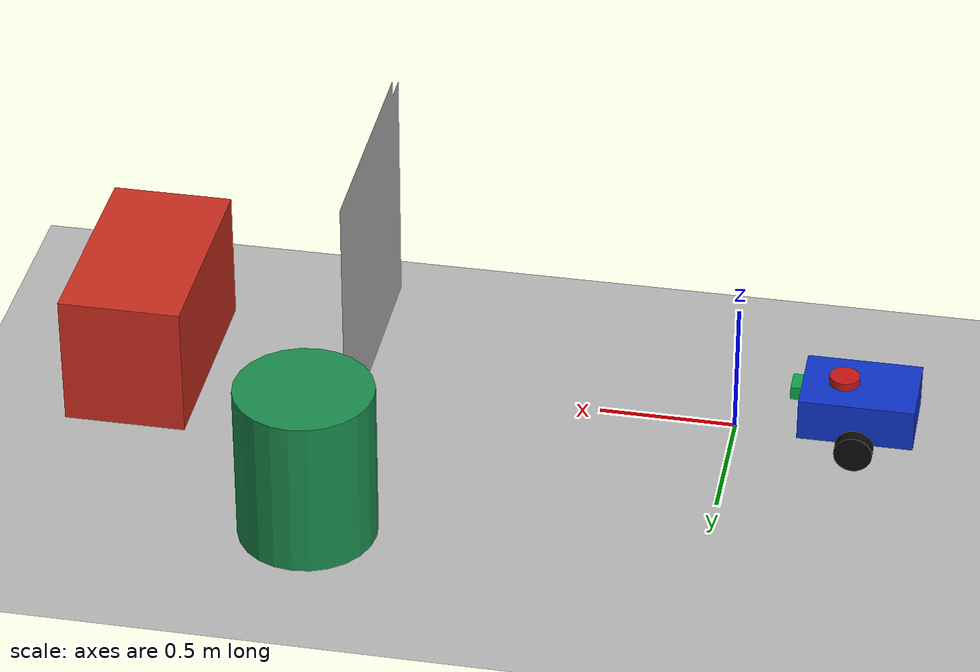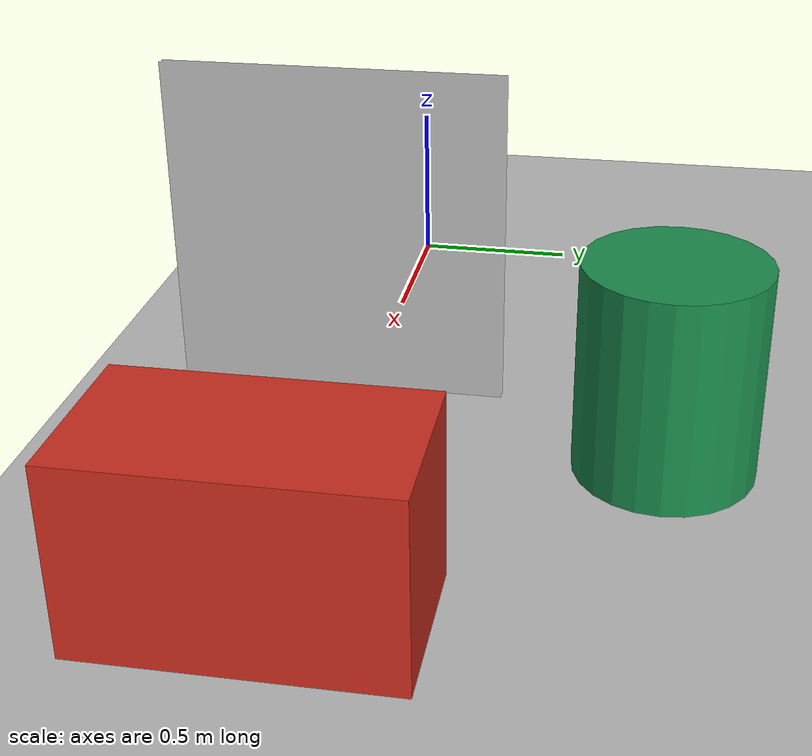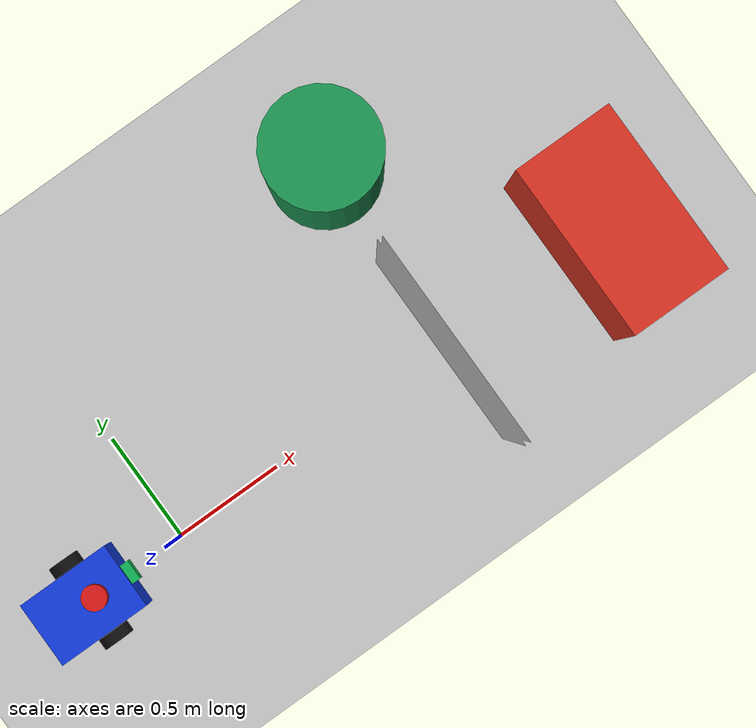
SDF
<?xml version="1.0"?>
<sdf version="1.10">
  <world name="diffbot_sensors_world">
    <plugin filename="gz-sim-physics-system" name="gz::sim::systems::Physics"/>
    <plugin filename="gz-sim-sensors-system" name="gz::sim::systems::Sensors">
      <render_engine>ogre2</render_engine>
    </plugin>
    <plugin filename="gz-sim-user-commands-system" name="gz::sim::systems::UserCommands"/>
    <plugin filename="gz-sim-scene-broadcaster-system" name="gz::sim::systems::SceneBroadcaster"/>

    <gravity>0 0 -9.8</gravity>
    <magnetic_field>6.0e-6 2.3e-5 -4.2e-5</magnetic_field>
    <atmosphere type="adiabatic"/>

    <scene>
      <ambient>0.65 0.65 0.65</ambient>
      <background>0.78 0.82 0.86</background>
      <grid>true</grid>
    </scene>

    <light name="sun" type="directional">
      <cast_shadows>true</cast_shadows>
      <pose>0 0 10 0 0 0</pose>
      <diffuse>0.8 0.8 0.8 1</diffuse>
      <specular>0.2 0.2 0.2 1</specular>
      <attenuation>
        <range>1000</range>
        <constant>0.9</constant>
        <linear>0.01</linear>
        <quadratic>0.001</quadratic>
      </attenuation>
      <direction>-0.5 0.1 -0.9</direction>
    </light>

    <model name="ground_plane">
      <static>true</static>
      <link name="link">
        <collision name="collision">
          <geometry>
            <plane>
              <normal>0 0 1</normal>
              <size>20 20</size>
            </plane>
          </geometry>
        </collision>
        <visual name="visual">
          <geometry>
            <plane>
              <normal>0 0 1</normal>
              <size>20 20</size>
            </plane>
          </geometry>
          <material>
            <ambient>0.72 0.72 0.72 1</ambient>
            <diffuse>0.72 0.72 0.72 1</diffuse>
            <specular>0.08 0.08 0.08 1</specular>
          </material>
        </visual>
      </link>
    </model>

    <model name="front_box">
      <static>true</static>
      <pose>2.2 0 0.25 0 0 0</pose>
      <link name="link">
        <collision name="collision">
          <geometry>
            <box>
              <size>0.45 0.80 0.50</size>
            </box>
          </geometry>
        </collision>
        <visual name="visual">
          <geometry>
            <box>
              <size>0.45 0.80 0.50</size>
            </box>
          </geometry>
          <material>
            <ambient>0.80 0.18 0.12 1</ambient>
            <diffuse>0.80 0.18 0.12 1</diffuse>
            <specular>0.08 0.08 0.08 1</specular>
          </material>
        </visual>
      </link>
    </model>

    <model name="left_cylinder">
      <static>true</static>
      <pose>1.4 0.9 0.30 0 0 0</pose>
      <link name="link">
        <collision name="collision">
          <geometry>
            <cylinder>
              <radius>0.25</radius>
              <length>0.60</length>
            </cylinder>
          </geometry>
        </collision>
        <visual name="visual">
          <geometry>
            <cylinder>
              <radius>0.25</radius>
              <length>0.60</length>
            </cylinder>
          </geometry>
          <material>
            <ambient>0.10 0.55 0.30 1</ambient>
            <diffuse>0.10 0.55 0.30 1</diffuse>
            <specular>0.08 0.08 0.08 1</specular>
          </material>
        </visual>
      </link>
    </model>

    <model name="yolo_stop_sign_board">
      <static>true</static>
      <pose>1.35 0 0.60 0 0 0</pose>
      <link name="sign_link">
        <collision name="collision">
          <geometry>
            <box>
              <size>0.02 0.90 0.90</size>
            </box>
          </geometry>
        </collision>
        <visual name="stop_sign_visual">
          <geometry>
            <mesh>
              <uri>package://robot_simulation/models/yolo_stop_sign_board/meshes/stop_sign_board.obj</uri>
            </mesh>
          </geometry>
        </visual>
      </link>
    </model>

    <model name="diffbot">
      <pose>-0.45 0 0 0 0 0</pose>

      <link name="base_link">
        <pose>0 0 0.16 0 0 0</pose>
        <inertial>
          <mass>4.0</mass>
          <inertia>
            <ixx>0.04</ixx>
            <ixy>0</ixy>
            <ixz>0</ixz>
            <iyy>0.08</iyy>
            <iyz>0</iyz>
            <izz>0.10</izz>
          </inertia>
        </inertial>
        <visual name="visual">
          <geometry>
            <box>
              <size>0.42 0.30 0.16</size>
            </box>
          </geometry>
          <material>
            <ambient>0.05 0.20 0.80 1</ambient>
            <diffuse>0.05 0.20 0.80 1</diffuse>
            <specular>0.10 0.10 0.10 1</specular>
          </material>
        </visual>
        <collision name="collision">
          <geometry>
            <box>
              <size>0.42 0.30 0.16</size>
            </box>
          </geometry>
        </collision>
      </link>

      <link name="left_wheel_link">
        <pose>0 0.18 0.07 0 0 0</pose>
        <inertial>
          <mass>0.35</mass>
          <inertia>
            <ixx>0.001</ixx>
            <ixy>0</ixy>
            <ixz>0</ixz>
            <iyy>0.001</iyy>
            <iyz>0</iyz>
            <izz>0.001</izz>
          </inertia>
        </inertial>
        <visual name="visual">
          <pose>0 0 0 1.5708 0 0</pose>
          <geometry>
            <cylinder>
              <radius>0.07</radius>
              <length>0.05</length>
            </cylinder>
          </geometry>
          <material>
            <ambient>0.04 0.04 0.04 1</ambient>
            <diffuse>0.04 0.04 0.04 1</diffuse>
            <specular>0.20 0.20 0.20 1</specular>
          </material>
        </visual>
        <collision name="collision">
          <pose>0 0 0 1.5708 0 0</pose>
          <geometry>
            <cylinder>
              <radius>0.07</radius>
              <length>0.05</length>
            </cylinder>
          </geometry>
          <surface>
            <friction>
              <ode>
                <mu>1.0</mu>
                <mu2>1.0</mu2>
              </ode>
            </friction>
          </surface>
        </collision>
      </link>

      <link name="right_wheel_link">
        <pose>0 -0.18 0.07 0 0 0</pose>
        <inertial>
          <mass>0.35</mass>
          <inertia>
            <ixx>0.001</ixx>
            <ixy>0</ixy>
            <ixz>0</ixz>
            <iyy>0.001</iyy>
            <iyz>0</iyz>
            <izz>0.001</izz>
          </inertia>
        </inertial>
        <visual name="visual">
          <pose>0 0 0 1.5708 0 0</pose>
          <geometry>
            <cylinder>
              <radius>0.07</radius>
              <length>0.05</length>
            </cylinder>
          </geometry>
          <material>
            <ambient>0.04 0.04 0.04 1</ambient>
            <diffuse>0.04 0.04 0.04 1</diffuse>
            <specular>0.20 0.20 0.20 1</specular>
          </material>
        </visual>
        <collision name="collision">
          <pose>0 0 0 1.5708 0 0</pose>
          <geometry>
            <cylinder>
              <radius>0.07</radius>
              <length>0.05</length>
            </cylinder>
          </geometry>
          <surface>
            <friction>
              <ode>
                <mu>1.0</mu>
                <mu2>1.0</mu2>
              </ode>
            </friction>
          </surface>
        </collision>
      </link>

      <link name="front_caster_link">
        <pose>0.16 0 0.035 0 0 0</pose>
        <inertial>
          <mass>0.1</mass>
          <inertia>
            <ixx>0.0001</ixx>
            <ixy>0</ixy>
            <ixz>0</ixz>
            <iyy>0.0001</iyy>
            <iyz>0</iyz>
            <izz>0.0001</izz>
          </inertia>
        </inertial>
        <visual name="visual">
          <geometry>
            <sphere>
              <radius>0.035</radius>
            </sphere>
          </geometry>
          <material>
            <ambient>0.08 0.08 0.08 1</ambient>
            <diffuse>0.08 0.08 0.08 1</diffuse>
            <specular>0.20 0.20 0.20 1</specular>
          </material>
        </visual>
        <collision name="collision">
          <geometry>
            <sphere>
              <radius>0.035</radius>
            </sphere>
          </geometry>
        </collision>
      </link>

      <link name="rear_caster_link">
        <pose>-0.16 0 0.035 0 0 0</pose>
        <inertial>
          <mass>0.1</mass>
          <inertia>
            <ixx>0.0001</ixx>
            <ixy>0</ixy>
            <ixz>0</ixz>
            <iyy>0.0001</iyy>
            <iyz>0</iyz>
            <izz>0.0001</izz>
          </inertia>
        </inertial>
        <visual name="visual">
          <geometry>
            <sphere>
              <radius>0.035</radius>
            </sphere>
          </geometry>
          <material>
            <ambient>0.08 0.08 0.08 1</ambient>
            <diffuse>0.08 0.08 0.08 1</diffuse>
            <specular>0.20 0.20 0.20 1</specular>
          </material>
        </visual>
        <collision name="collision">
          <geometry>
            <sphere>
              <radius>0.035</radius>
            </sphere>
          </geometry>
        </collision>
      </link>

      <link name="laser_link">
        <pose>0.06 0 0.25 0 0 0</pose>
        <inertial>
          <mass>0.05</mass>
          <inertia>
            <ixx>0.0001</ixx>
            <ixy>0</ixy>
            <ixz>0</ixz>
            <iyy>0.0001</iyy>
            <iyz>0</iyz>
            <izz>0.0001</izz>
          </inertia>
        </inertial>
        <visual name="visual">
          <geometry>
            <cylinder>
              <radius>0.055</radius>
              <length>0.04</length>
            </cylinder>
          </geometry>
          <material>
            <ambient>0.80 0.08 0.08 1</ambient>
            <diffuse>0.80 0.08 0.08 1</diffuse>
            <specular>0.20 0.20 0.20 1</specular>
          </material>
        </visual>
        <sensor name="front_lidar" type="gpu_lidar">
          <topic>/scan</topic>
          <update_rate>10</update_rate>
          <lidar>
            <scan>
              <horizontal>
                <samples>360</samples>
                <resolution>1</resolution>
                <min_angle>-1.5708</min_angle>
                <max_angle>1.5708</max_angle>
              </horizontal>
              <vertical>
                <samples>1</samples>
                <resolution>1</resolution>
                <min_angle>0</min_angle>
                <max_angle>0</max_angle>
              </vertical>
            </scan>
            <range>
              <min>0.08</min>
              <max>8.0</max>
              <resolution>0.01</resolution>
            </range>
          </lidar>
          <always_on>true</always_on>
          <visualize>true</visualize>
        </sensor>
      </link>

      <link name="camera_link">
        <pose>0.22 0 0.20 0 0 0</pose>
        <inertial>
          <mass>0.05</mass>
          <inertia>
            <ixx>0.0001</ixx>
            <ixy>0</ixy>
            <ixz>0</ixz>
            <iyy>0.0001</iyy>
            <iyz>0</iyz>
            <izz>0.0001</izz>
          </inertia>
        </inertial>
        <visual name="visual">
          <geometry>
            <box>
              <size>0.06 0.09 0.05</size>
            </box>
          </geometry>
          <material>
            <ambient>0.05 0.65 0.30 1</ambient>
            <diffuse>0.05 0.65 0.30 1</diffuse>
            <specular>0.20 0.20 0.20 1</specular>
          </material>
        </visual>
        <sensor name="front_camera" type="camera">
          <topic>/camera/image_raw</topic>
          <update_rate>15</update_rate>
          <camera>
            <camera_info_topic>/camera/camera_info</camera_info_topic>
            <horizontal_fov>1.047</horizontal_fov>
            <image>
              <width>320</width>
              <height>240</height>
              <format>R8G8B8</format>
            </image>
            <clip>
              <near>0.05</near>
              <far>20.0</far>
            </clip>
            <optical_frame_id>camera_optical_frame</optical_frame_id>
          </camera>
          <always_on>true</always_on>
          <visualize>true</visualize>
        </sensor>
      </link>

      <joint name="left_wheel_joint" type="revolute">
        <parent>base_link</parent>
        <child>left_wheel_link</child>
        <axis>
          <xyz>0 1 0</xyz>
          <limit>
            <lower>-1.79769e+308</lower>
            <upper>1.79769e+308</upper>
          </limit>
        </axis>
      </joint>

      <joint name="right_wheel_joint" type="revolute">
        <parent>base_link</parent>
        <child>right_wheel_link</child>
        <axis>
          <xyz>0 1 0</xyz>
          <limit>
            <lower>-1.79769e+308</lower>
            <upper>1.79769e+308</upper>
          </limit>
        </axis>
      </joint>

      <joint name="front_caster_joint" type="ball">
        <parent>base_link</parent>
        <child>front_caster_link</child>
      </joint>

      <joint name="rear_caster_joint" type="ball">
        <parent>base_link</parent>
        <child>rear_caster_link</child>
      </joint>

      <joint name="laser_joint" type="fixed">
        <parent>base_link</parent>
        <child>laser_link</child>
      </joint>

      <joint name="camera_joint" type="fixed">
        <parent>base_link</parent>
        <child>camera_link</child>
      </joint>

      <plugin filename="gz-sim-diff-drive-system" name="gz::sim::systems::DiffDrive">
        <left_joint>left_wheel_joint</left_joint>
        <right_joint>right_wheel_joint</right_joint>
        <wheel_separation>0.36</wheel_separation>
        <wheel_radius>0.07</wheel_radius>
        <topic>/cmd_vel</topic>
        <odom_topic>/odom</odom_topic>
        <frame_id>odom</frame_id>
        <child_frame_id>base_link</child_frame_id>
        <odom_publish_frequency>30</odom_publish_frequency>
        <max_linear_velocity>0.6</max_linear_velocity>
        <min_linear_velocity>-0.3</min_linear_velocity>
        <max_angular_velocity>1.2</max_angular_velocity>
        <min_angular_velocity>-1.2</min_angular_velocity>
      </plugin>
    </model>
  </world>
</sdf>
